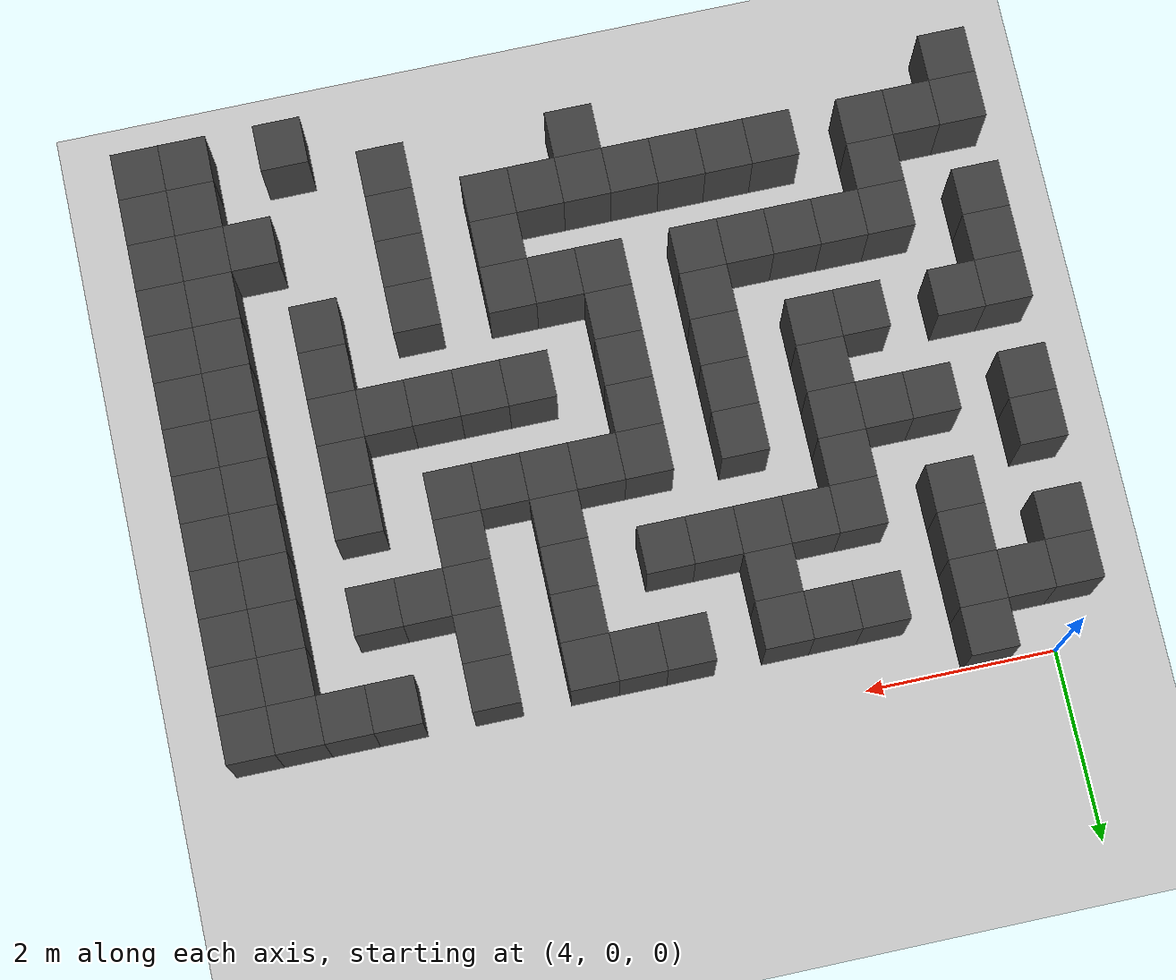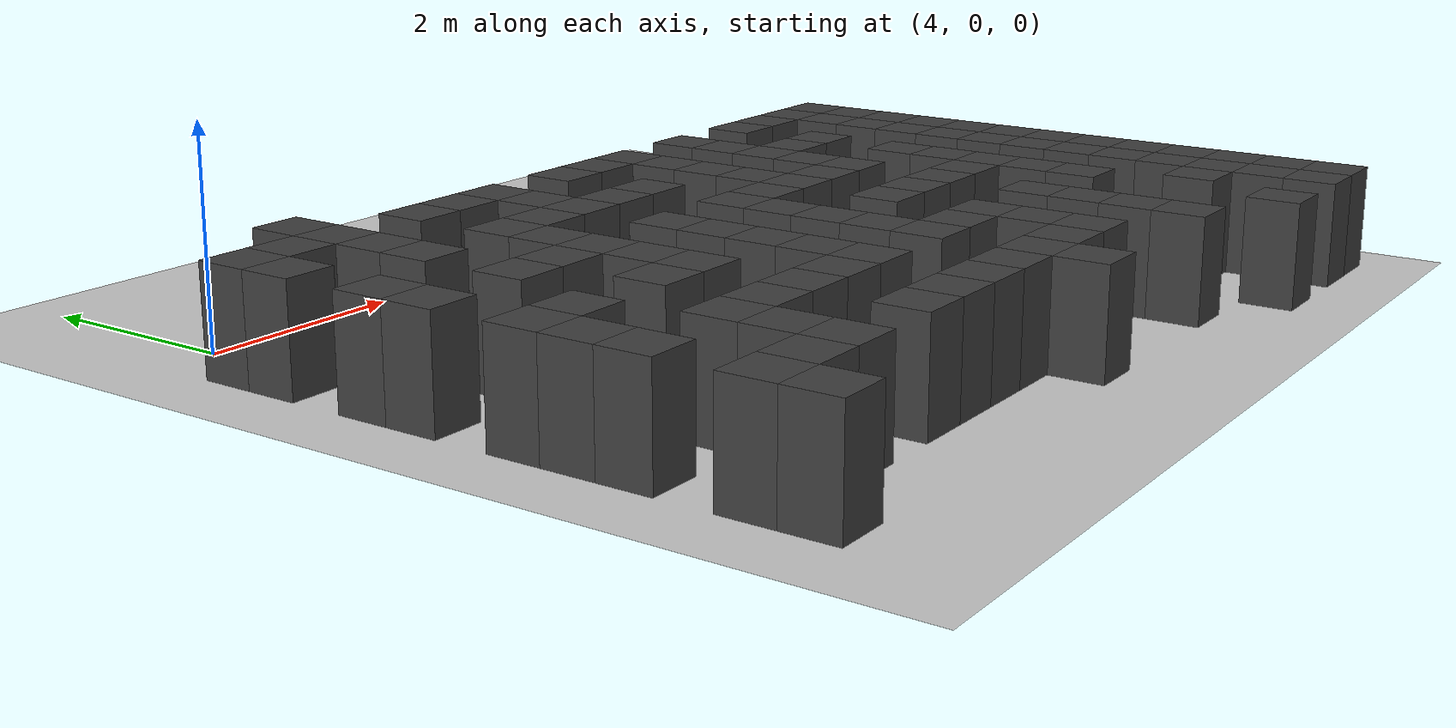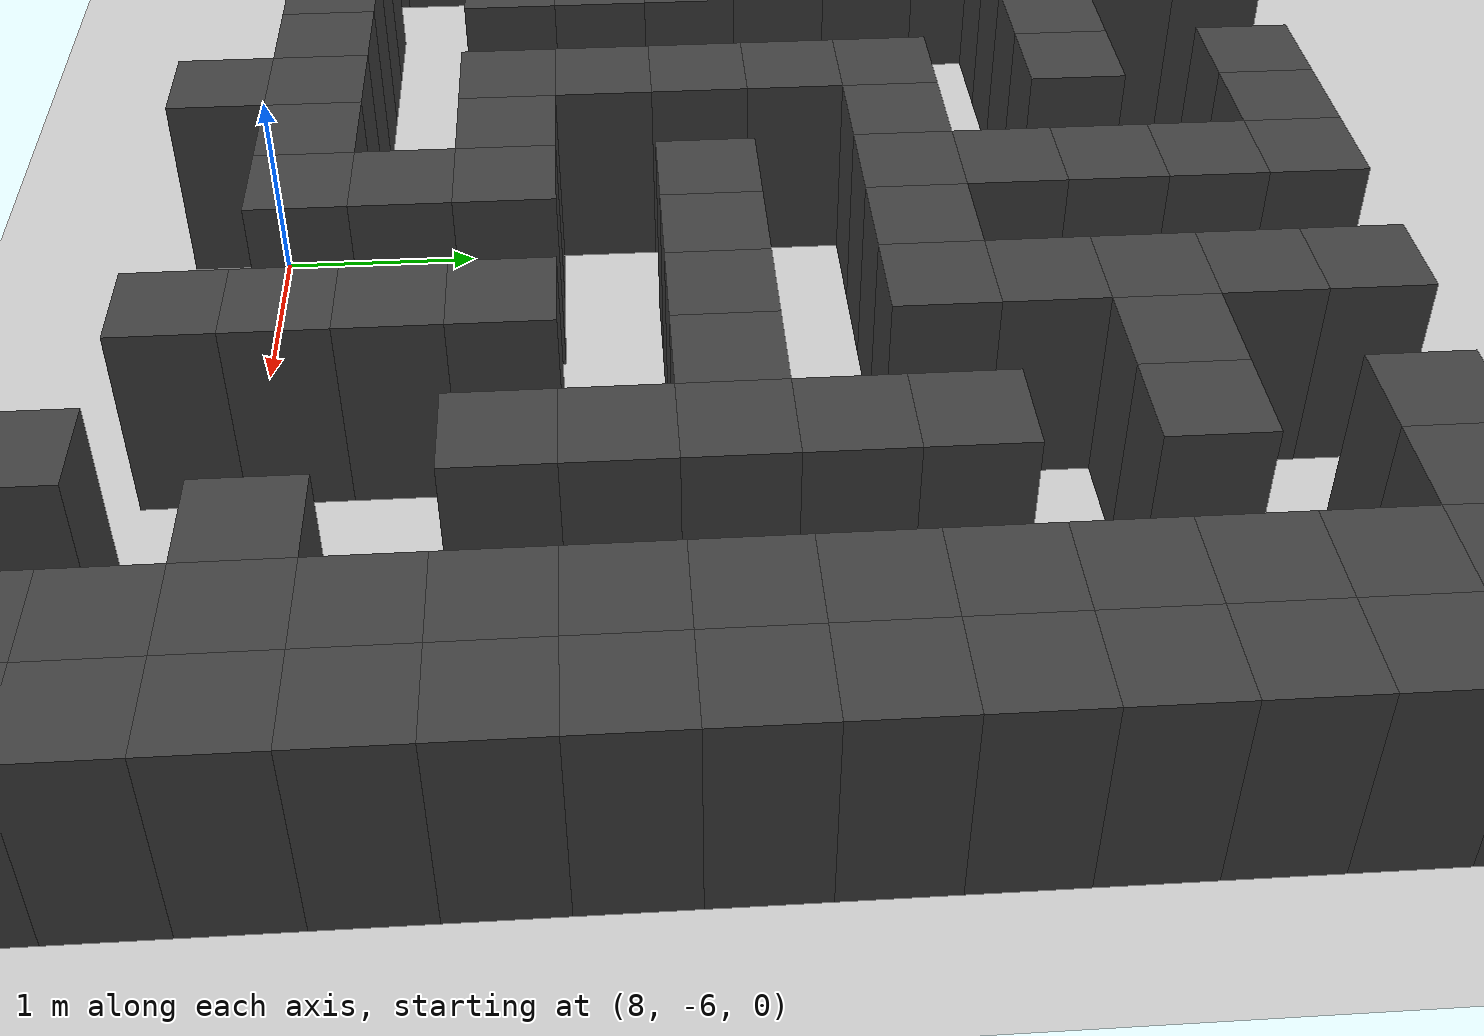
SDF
<sdf version="1.7">
 <world name="map_18332">
  <model name="ground_plane">
   <static>true</static>
   <link name="link">
    <collision name="collision">
     <geometry><plane><normal>0 0 1</normal><size>200 200</size></plane></geometry>
    </collision>
    <visual name="visual">
     <geometry><plane><normal>0 0 1</normal><size>200 200</size></plane></geometry>
     <material><ambient>0.8 0.8 0.8 1</ambient><diffuse>0.8 0.8 0.8 1</diffuse></material>
    </visual>
   </link>
  </model>
  <model name="maze_environment">
   <static>true</static>
   <link name="wall_651">
    <pose>4.750 -0.250 0.500 0 0 0</pose>
    <collision name="col"><geometry><box><size>0.5 0.5 1.0</size></box></geometry></collision>
    <visual name="vis">
     <geometry><box><size>0.5 0.5 1.0</size></box></geometry>
     <material><ambient>0.15 0.15 0.15 1</ambient><diffuse>0.25 0.25 0.25 1</diffuse></material>
    </visual>
   </link>
   <link name="wall_678">
    <pose>3.750 -0.750 0.500 0 0 0</pose>
    <collision name="col"><geometry><box><size>0.5 0.5 1.0</size></box></geometry></collision>
    <visual name="vis">
     <geometry><box><size>0.5 0.5 1.0</size></box></geometry>
     <material><ambient>0.15 0.15 0.15 1</ambient><diffuse>0.25 0.25 0.25 1</diffuse></material>
    </visual>
   </link>
   <link name="wall_679">
    <pose>4.250 -0.750 0.500 0 0 0</pose>
    <collision name="col"><geometry><box><size>0.5 0.5 1.0</size></box></geometry></collision>
    <visual name="vis">
     <geometry><box><size>0.5 0.5 1.0</size></box></geometry>
     <material><ambient>0.15 0.15 0.15 1</ambient><diffuse>0.25 0.25 0.25 1</diffuse></material>
    </visual>
   </link>
   <link name="wall_680">
    <pose>4.750 -0.750 0.500 0 0 0</pose>
    <collision name="col"><geometry><box><size>0.5 0.5 1.0</size></box></geometry></collision>
    <visual name="vis">
     <geometry><box><size>0.5 0.5 1.0</size></box></geometry>
     <material><ambient>0.15 0.15 0.15 1</ambient><diffuse>0.25 0.25 0.25 1</diffuse></material>
    </visual>
   </link>
   <link name="wall_681">
    <pose>5.750 -0.750 0.500 0 0 0</pose>
    <collision name="col"><geometry><box><size>0.5 0.5 1.0</size></box></geometry></collision>
    <visual name="vis">
     <geometry><box><size>0.5 0.5 1.0</size></box></geometry>
     <material><ambient>0.15 0.15 0.15 1</ambient><diffuse>0.25 0.25 0.25 1</diffuse></material>
    </visual>
   </link>
   <link name="wall_682">
    <pose>6.250 -0.750 0.500 0 0 0</pose>
    <collision name="col"><geometry><box><size>0.5 0.5 1.0</size></box></geometry></collision>
    <visual name="vis">
     <geometry><box><size>0.5 0.5 1.0</size></box></geometry>
     <material><ambient>0.15 0.15 0.15 1</ambient><diffuse>0.25 0.25 0.25 1</diffuse></material>
    </visual>
   </link>
   <link name="wall_683">
    <pose>6.750 -0.750 0.500 0 0 0</pose>
    <collision name="col"><geometry><box><size>0.5 0.5 1.0</size></box></geometry></collision>
    <visual name="vis">
     <geometry><box><size>0.5 0.5 1.0</size></box></geometry>
     <material><ambient>0.15 0.15 0.15 1</ambient><diffuse>0.25 0.25 0.25 1</diffuse></material>
    </visual>
   </link>
   <link name="wall_684">
    <pose>7.750 -0.750 0.500 0 0 0</pose>
    <collision name="col"><geometry><box><size>0.5 0.5 1.0</size></box></geometry></collision>
    <visual name="vis">
     <geometry><box><size>0.5 0.5 1.0</size></box></geometry>
     <material><ambient>0.15 0.15 0.15 1</ambient><diffuse>0.25 0.25 0.25 1</diffuse></material>
    </visual>
   </link>
   <link name="wall_685">
    <pose>8.250 -0.750 0.500 0 0 0</pose>
    <collision name="col"><geometry><box><size>0.5 0.5 1.0</size></box></geometry></collision>
    <visual name="vis">
     <geometry><box><size>0.5 0.5 1.0</size></box></geometry>
     <material><ambient>0.15 0.15 0.15 1</ambient><diffuse>0.25 0.25 0.25 1</diffuse></material>
    </visual>
   </link>
   <link name="wall_686">
    <pose>8.750 -0.750 0.500 0 0 0</pose>
    <collision name="col"><geometry><box><size>0.5 0.5 1.0</size></box></geometry></collision>
    <visual name="vis">
     <geometry><box><size>0.5 0.5 1.0</size></box></geometry>
     <material><ambient>0.15 0.15 0.15 1</ambient><diffuse>0.25 0.25 0.25 1</diffuse></material>
    </visual>
   </link>
   <link name="wall_687">
    <pose>9.750 -0.750 0.500 0 0 0</pose>
    <collision name="col"><geometry><box><size>0.5 0.5 1.0</size></box></geometry></collision>
    <visual name="vis">
     <geometry><box><size>0.5 0.5 1.0</size></box></geometry>
     <material><ambient>0.15 0.15 0.15 1</ambient><diffuse>0.25 0.25 0.25 1</diffuse></material>
    </visual>
   </link>
   <link name="wall_688">
    <pose>10.750 -0.750 0.500 0 0 0</pose>
    <collision name="col"><geometry><box><size>0.5 0.5 1.0</size></box></geometry></collision>
    <visual name="vis">
     <geometry><box><size>0.5 0.5 1.0</size></box></geometry>
     <material><ambient>0.15 0.15 0.15 1</ambient><diffuse>0.25 0.25 0.25 1</diffuse></material>
    </visual>
   </link>
   <link name="wall_689">
    <pose>11.250 -0.750 0.500 0 0 0</pose>
    <collision name="col"><geometry><box><size>0.5 0.5 1.0</size></box></geometry></collision>
    <visual name="vis">
     <geometry><box><size>0.5 0.5 1.0</size></box></geometry>
     <material><ambient>0.15 0.15 0.15 1</ambient><diffuse>0.25 0.25 0.25 1</diffuse></material>
    </visual>
   </link>
   <link name="wall_690">
    <pose>11.750 -0.750 0.500 0 0 0</pose>
    <collision name="col"><geometry><box><size>0.5 0.5 1.0</size></box></geometry></collision>
    <visual name="vis">
     <geometry><box><size>0.5 0.5 1.0</size></box></geometry>
     <material><ambient>0.15 0.15 0.15 1</ambient><diffuse>0.25 0.25 0.25 1</diffuse></material>
    </visual>
   </link>
   <link name="wall_691">
    <pose>12.250 -0.750 0.500 0 0 0</pose>
    <collision name="col"><geometry><box><size>0.5 0.5 1.0</size></box></geometry></collision>
    <visual name="vis">
     <geometry><box><size>0.5 0.5 1.0</size></box></geometry>
     <material><ambient>0.15 0.15 0.15 1</ambient><diffuse>0.25 0.25 0.25 1</diffuse></material>
    </visual>
   </link>
   <link name="wall_699">
    <pose>3.750 -1.250 0.500 0 0 0</pose>
    <collision name="col"><geometry><box><size>0.5 0.5 1.0</size></box></geometry></collision>
    <visual name="vis">
     <geometry><box><size>0.5 0.5 1.0</size></box></geometry>
     <material><ambient>0.15 0.15 0.15 1</ambient><diffuse>0.25 0.25 0.25 1</diffuse></material>
    </visual>
   </link>
   <link name="wall_700">
    <pose>4.750 -1.250 0.500 0 0 0</pose>
    <collision name="col"><geometry><box><size>0.5 0.5 1.0</size></box></geometry></collision>
    <visual name="vis">
     <geometry><box><size>0.5 0.5 1.0</size></box></geometry>
     <material><ambient>0.15 0.15 0.15 1</ambient><diffuse>0.25 0.25 0.25 1</diffuse></material>
    </visual>
   </link>
   <link name="wall_701">
    <pose>6.750 -1.250 0.500 0 0 0</pose>
    <collision name="col"><geometry><box><size>0.5 0.5 1.0</size></box></geometry></collision>
    <visual name="vis">
     <geometry><box><size>0.5 0.5 1.0</size></box></geometry>
     <material><ambient>0.15 0.15 0.15 1</ambient><diffuse>0.25 0.25 0.25 1</diffuse></material>
    </visual>
   </link>
   <link name="wall_702">
    <pose>8.750 -1.250 0.500 0 0 0</pose>
    <collision name="col"><geometry><box><size>0.5 0.5 1.0</size></box></geometry></collision>
    <visual name="vis">
     <geometry><box><size>0.5 0.5 1.0</size></box></geometry>
     <material><ambient>0.15 0.15 0.15 1</ambient><diffuse>0.25 0.25 0.25 1</diffuse></material>
    </visual>
   </link>
   <link name="wall_703">
    <pose>9.750 -1.250 0.500 0 0 0</pose>
    <collision name="col"><geometry><box><size>0.5 0.5 1.0</size></box></geometry></collision>
    <visual name="vis">
     <geometry><box><size>0.5 0.5 1.0</size></box></geometry>
     <material><ambient>0.15 0.15 0.15 1</ambient><diffuse>0.25 0.25 0.25 1</diffuse></material>
    </visual>
   </link>
   <link name="wall_704">
    <pose>11.750 -1.250 0.500 0 0 0</pose>
    <collision name="col"><geometry><box><size>0.5 0.5 1.0</size></box></geometry></collision>
    <visual name="vis">
     <geometry><box><size>0.5 0.5 1.0</size></box></geometry>
     <material><ambient>0.15 0.15 0.15 1</ambient><diffuse>0.25 0.25 0.25 1</diffuse></material>
    </visual>
   </link>
   <link name="wall_705">
    <pose>12.250 -1.250 0.500 0 0 0</pose>
    <collision name="col"><geometry><box><size>0.5 0.5 1.0</size></box></geometry></collision>
    <visual name="vis">
     <geometry><box><size>0.5 0.5 1.0</size></box></geometry>
     <material><ambient>0.15 0.15 0.15 1</ambient><diffuse>0.25 0.25 0.25 1</diffuse></material>
    </visual>
   </link>
   <link name="wall_733">
    <pose>4.750 -1.750 0.500 0 0 0</pose>
    <collision name="col"><geometry><box><size>0.5 0.5 1.0</size></box></geometry></collision>
    <visual name="vis">
     <geometry><box><size>0.5 0.5 1.0</size></box></geometry>
     <material><ambient>0.15 0.15 0.15 1</ambient><diffuse>0.25 0.25 0.25 1</diffuse></material>
    </visual>
   </link>
   <link name="wall_734">
    <pose>5.750 -1.750 0.500 0 0 0</pose>
    <collision name="col"><geometry><box><size>0.5 0.5 1.0</size></box></geometry></collision>
    <visual name="vis">
     <geometry><box><size>0.5 0.5 1.0</size></box></geometry>
     <material><ambient>0.15 0.15 0.15 1</ambient><diffuse>0.25 0.25 0.25 1</diffuse></material>
    </visual>
   </link>
   <link name="wall_735">
    <pose>6.250 -1.750 0.500 0 0 0</pose>
    <collision name="col"><geometry><box><size>0.5 0.5 1.0</size></box></geometry></collision>
    <visual name="vis">
     <geometry><box><size>0.5 0.5 1.0</size></box></geometry>
     <material><ambient>0.15 0.15 0.15 1</ambient><diffuse>0.25 0.25 0.25 1</diffuse></material>
    </visual>
   </link>
   <link name="wall_736">
    <pose>6.750 -1.750 0.500 0 0 0</pose>
    <collision name="col"><geometry><box><size>0.5 0.5 1.0</size></box></geometry></collision>
    <visual name="vis">
     <geometry><box><size>0.5 0.5 1.0</size></box></geometry>
     <material><ambient>0.15 0.15 0.15 1</ambient><diffuse>0.25 0.25 0.25 1</diffuse></material>
    </visual>
   </link>
   <link name="wall_737">
    <pose>7.250 -1.750 0.500 0 0 0</pose>
    <collision name="col"><geometry><box><size>0.5 0.5 1.0</size></box></geometry></collision>
    <visual name="vis">
     <geometry><box><size>0.5 0.5 1.0</size></box></geometry>
     <material><ambient>0.15 0.15 0.15 1</ambient><diffuse>0.25 0.25 0.25 1</diffuse></material>
    </visual>
   </link>
   <link name="wall_738">
    <pose>7.750 -1.750 0.500 0 0 0</pose>
    <collision name="col"><geometry><box><size>0.5 0.5 1.0</size></box></geometry></collision>
    <visual name="vis">
     <geometry><box><size>0.5 0.5 1.0</size></box></geometry>
     <material><ambient>0.15 0.15 0.15 1</ambient><diffuse>0.25 0.25 0.25 1</diffuse></material>
    </visual>
   </link>
   <link name="wall_739">
    <pose>8.750 -1.750 0.500 0 0 0</pose>
    <collision name="col"><geometry><box><size>0.5 0.5 1.0</size></box></geometry></collision>
    <visual name="vis">
     <geometry><box><size>0.5 0.5 1.0</size></box></geometry>
     <material><ambient>0.15 0.15 0.15 1</ambient><diffuse>0.25 0.25 0.25 1</diffuse></material>
    </visual>
   </link>
   <link name="wall_740">
    <pose>9.750 -1.750 0.500 0 0 0</pose>
    <collision name="col"><geometry><box><size>0.5 0.5 1.0</size></box></geometry></collision>
    <visual name="vis">
     <geometry><box><size>0.5 0.5 1.0</size></box></geometry>
     <material><ambient>0.15 0.15 0.15 1</ambient><diffuse>0.25 0.25 0.25 1</diffuse></material>
    </visual>
   </link>
   <link name="wall_741">
    <pose>10.250 -1.750 0.500 0 0 0</pose>
    <collision name="col"><geometry><box><size>0.5 0.5 1.0</size></box></geometry></collision>
    <visual name="vis">
     <geometry><box><size>0.5 0.5 1.0</size></box></geometry>
     <material><ambient>0.15 0.15 0.15 1</ambient><diffuse>0.25 0.25 0.25 1</diffuse></material>
    </visual>
   </link>
   <link name="wall_742">
    <pose>10.750 -1.750 0.500 0 0 0</pose>
    <collision name="col"><geometry><box><size>0.5 0.5 1.0</size></box></geometry></collision>
    <visual name="vis">
     <geometry><box><size>0.5 0.5 1.0</size></box></geometry>
     <material><ambient>0.15 0.15 0.15 1</ambient><diffuse>0.25 0.25 0.25 1</diffuse></material>
    </visual>
   </link>
   <link name="wall_743">
    <pose>11.750 -1.750 0.500 0 0 0</pose>
    <collision name="col"><geometry><box><size>0.5 0.5 1.0</size></box></geometry></collision>
    <visual name="vis">
     <geometry><box><size>0.5 0.5 1.0</size></box></geometry>
     <material><ambient>0.15 0.15 0.15 1</ambient><diffuse>0.25 0.25 0.25 1</diffuse></material>
    </visual>
   </link>
   <link name="wall_744">
    <pose>12.250 -1.750 0.500 0 0 0</pose>
    <collision name="col"><geometry><box><size>0.5 0.5 1.0</size></box></geometry></collision>
    <visual name="vis">
     <geometry><box><size>0.5 0.5 1.0</size></box></geometry>
     <material><ambient>0.15 0.15 0.15 1</ambient><diffuse>0.25 0.25 0.25 1</diffuse></material>
    </visual>
   </link>
   <link name="wall_751">
    <pose>3.750 -2.250 0.500 0 0 0</pose>
    <collision name="col"><geometry><box><size>0.5 0.5 1.0</size></box></geometry></collision>
    <visual name="vis">
     <geometry><box><size>0.5 0.5 1.0</size></box></geometry>
     <material><ambient>0.15 0.15 0.15 1</ambient><diffuse>0.25 0.25 0.25 1</diffuse></material>
    </visual>
   </link>
   <link name="wall_752">
    <pose>5.750 -2.250 0.500 0 0 0</pose>
    <collision name="col"><geometry><box><size>0.5 0.5 1.0</size></box></geometry></collision>
    <visual name="vis">
     <geometry><box><size>0.5 0.5 1.0</size></box></geometry>
     <material><ambient>0.15 0.15 0.15 1</ambient><diffuse>0.25 0.25 0.25 1</diffuse></material>
    </visual>
   </link>
   <link name="wall_753">
    <pose>8.750 -2.250 0.500 0 0 0</pose>
    <collision name="col"><geometry><box><size>0.5 0.5 1.0</size></box></geometry></collision>
    <visual name="vis">
     <geometry><box><size>0.5 0.5 1.0</size></box></geometry>
     <material><ambient>0.15 0.15 0.15 1</ambient><diffuse>0.25 0.25 0.25 1</diffuse></material>
    </visual>
   </link>
   <link name="wall_754">
    <pose>9.750 -2.250 0.500 0 0 0</pose>
    <collision name="col"><geometry><box><size>0.5 0.5 1.0</size></box></geometry></collision>
    <visual name="vis">
     <geometry><box><size>0.5 0.5 1.0</size></box></geometry>
     <material><ambient>0.15 0.15 0.15 1</ambient><diffuse>0.25 0.25 0.25 1</diffuse></material>
    </visual>
   </link>
   <link name="wall_755">
    <pose>11.750 -2.250 0.500 0 0 0</pose>
    <collision name="col"><geometry><box><size>0.5 0.5 1.0</size></box></geometry></collision>
    <visual name="vis">
     <geometry><box><size>0.5 0.5 1.0</size></box></geometry>
     <material><ambient>0.15 0.15 0.15 1</ambient><diffuse>0.25 0.25 0.25 1</diffuse></material>
    </visual>
   </link>
   <link name="wall_756">
    <pose>12.250 -2.250 0.500 0 0 0</pose>
    <collision name="col"><geometry><box><size>0.5 0.5 1.0</size></box></geometry></collision>
    <visual name="vis">
     <geometry><box><size>0.5 0.5 1.0</size></box></geometry>
     <material><ambient>0.15 0.15 0.15 1</ambient><diffuse>0.25 0.25 0.25 1</diffuse></material>
    </visual>
   </link>
   <link name="wall_778">
    <pose>3.750 -2.750 0.500 0 0 0</pose>
    <collision name="col"><geometry><box><size>0.5 0.5 1.0</size></box></geometry></collision>
    <visual name="vis">
     <geometry><box><size>0.5 0.5 1.0</size></box></geometry>
     <material><ambient>0.15 0.15 0.15 1</ambient><diffuse>0.25 0.25 0.25 1</diffuse></material>
    </visual>
   </link>
   <link name="wall_779">
    <pose>4.750 -2.750 0.500 0 0 0</pose>
    <collision name="col"><geometry><box><size>0.5 0.5 1.0</size></box></geometry></collision>
    <visual name="vis">
     <geometry><box><size>0.5 0.5 1.0</size></box></geometry>
     <material><ambient>0.15 0.15 0.15 1</ambient><diffuse>0.25 0.25 0.25 1</diffuse></material>
    </visual>
   </link>
   <link name="wall_780">
    <pose>5.250 -2.750 0.500 0 0 0</pose>
    <collision name="col"><geometry><box><size>0.5 0.5 1.0</size></box></geometry></collision>
    <visual name="vis">
     <geometry><box><size>0.5 0.5 1.0</size></box></geometry>
     <material><ambient>0.15 0.15 0.15 1</ambient><diffuse>0.25 0.25 0.25 1</diffuse></material>
    </visual>
   </link>
   <link name="wall_781">
    <pose>5.750 -2.750 0.500 0 0 0</pose>
    <collision name="col"><geometry><box><size>0.5 0.5 1.0</size></box></geometry></collision>
    <visual name="vis">
     <geometry><box><size>0.5 0.5 1.0</size></box></geometry>
     <material><ambient>0.15 0.15 0.15 1</ambient><diffuse>0.25 0.25 0.25 1</diffuse></material>
    </visual>
   </link>
   <link name="wall_782">
    <pose>6.750 -2.750 0.500 0 0 0</pose>
    <collision name="col"><geometry><box><size>0.5 0.5 1.0</size></box></geometry></collision>
    <visual name="vis">
     <geometry><box><size>0.5 0.5 1.0</size></box></geometry>
     <material><ambient>0.15 0.15 0.15 1</ambient><diffuse>0.25 0.25 0.25 1</diffuse></material>
    </visual>
   </link>
   <link name="wall_783">
    <pose>7.750 -2.750 0.500 0 0 0</pose>
    <collision name="col"><geometry><box><size>0.5 0.5 1.0</size></box></geometry></collision>
    <visual name="vis">
     <geometry><box><size>0.5 0.5 1.0</size></box></geometry>
     <material><ambient>0.15 0.15 0.15 1</ambient><diffuse>0.25 0.25 0.25 1</diffuse></material>
    </visual>
   </link>
   <link name="wall_784">
    <pose>8.250 -2.750 0.500 0 0 0</pose>
    <collision name="col"><geometry><box><size>0.5 0.5 1.0</size></box></geometry></collision>
    <visual name="vis">
     <geometry><box><size>0.5 0.5 1.0</size></box></geometry>
     <material><ambient>0.15 0.15 0.15 1</ambient><diffuse>0.25 0.25 0.25 1</diffuse></material>
    </visual>
   </link>
   <link name="wall_785">
    <pose>8.750 -2.750 0.500 0 0 0</pose>
    <collision name="col"><geometry><box><size>0.5 0.5 1.0</size></box></geometry></collision>
    <visual name="vis">
     <geometry><box><size>0.5 0.5 1.0</size></box></geometry>
     <material><ambient>0.15 0.15 0.15 1</ambient><diffuse>0.25 0.25 0.25 1</diffuse></material>
    </visual>
   </link>
   <link name="wall_786">
    <pose>9.250 -2.750 0.500 0 0 0</pose>
    <collision name="col"><geometry><box><size>0.5 0.5 1.0</size></box></geometry></collision>
    <visual name="vis">
     <geometry><box><size>0.5 0.5 1.0</size></box></geometry>
     <material><ambient>0.15 0.15 0.15 1</ambient><diffuse>0.25 0.25 0.25 1</diffuse></material>
    </visual>
   </link>
   <link name="wall_787">
    <pose>9.750 -2.750 0.500 0 0 0</pose>
    <collision name="col"><geometry><box><size>0.5 0.5 1.0</size></box></geometry></collision>
    <visual name="vis">
     <geometry><box><size>0.5 0.5 1.0</size></box></geometry>
     <material><ambient>0.15 0.15 0.15 1</ambient><diffuse>0.25 0.25 0.25 1</diffuse></material>
    </visual>
   </link>
   <link name="wall_788">
    <pose>10.750 -2.750 0.500 0 0 0</pose>
    <collision name="col"><geometry><box><size>0.5 0.5 1.0</size></box></geometry></collision>
    <visual name="vis">
     <geometry><box><size>0.5 0.5 1.0</size></box></geometry>
     <material><ambient>0.15 0.15 0.15 1</ambient><diffuse>0.25 0.25 0.25 1</diffuse></material>
    </visual>
   </link>
   <link name="wall_789">
    <pose>11.750 -2.750 0.500 0 0 0</pose>
    <collision name="col"><geometry><box><size>0.5 0.5 1.0</size></box></geometry></collision>
    <visual name="vis">
     <geometry><box><size>0.5 0.5 1.0</size></box></geometry>
     <material><ambient>0.15 0.15 0.15 1</ambient><diffuse>0.25 0.25 0.25 1</diffuse></material>
    </visual>
   </link>
   <link name="wall_790">
    <pose>12.250 -2.750 0.500 0 0 0</pose>
    <collision name="col"><geometry><box><size>0.5 0.5 1.0</size></box></geometry></collision>
    <visual name="vis">
     <geometry><box><size>0.5 0.5 1.0</size></box></geometry>
     <material><ambient>0.15 0.15 0.15 1</ambient><diffuse>0.25 0.25 0.25 1</diffuse></material>
    </visual>
   </link>
   <link name="wall_802">
    <pose>5.750 -3.250 0.500 0 0 0</pose>
    <collision name="col"><geometry><box><size>0.5 0.5 1.0</size></box></geometry></collision>
    <visual name="vis">
     <geometry><box><size>0.5 0.5 1.0</size></box></geometry>
     <material><ambient>0.15 0.15 0.15 1</ambient><diffuse>0.25 0.25 0.25 1</diffuse></material>
    </visual>
   </link>
   <link name="wall_803">
    <pose>6.750 -3.250 0.500 0 0 0</pose>
    <collision name="col"><geometry><box><size>0.5 0.5 1.0</size></box></geometry></collision>
    <visual name="vis">
     <geometry><box><size>0.5 0.5 1.0</size></box></geometry>
     <material><ambient>0.15 0.15 0.15 1</ambient><diffuse>0.25 0.25 0.25 1</diffuse></material>
    </visual>
   </link>
   <link name="wall_804">
    <pose>7.750 -3.250 0.500 0 0 0</pose>
    <collision name="col"><geometry><box><size>0.5 0.5 1.0</size></box></geometry></collision>
    <visual name="vis">
     <geometry><box><size>0.5 0.5 1.0</size></box></geometry>
     <material><ambient>0.15 0.15 0.15 1</ambient><diffuse>0.25 0.25 0.25 1</diffuse></material>
    </visual>
   </link>
   <link name="wall_805">
    <pose>10.750 -3.250 0.500 0 0 0</pose>
    <collision name="col"><geometry><box><size>0.5 0.5 1.0</size></box></geometry></collision>
    <visual name="vis">
     <geometry><box><size>0.5 0.5 1.0</size></box></geometry>
     <material><ambient>0.15 0.15 0.15 1</ambient><diffuse>0.25 0.25 0.25 1</diffuse></material>
    </visual>
   </link>
   <link name="wall_806">
    <pose>11.750 -3.250 0.500 0 0 0</pose>
    <collision name="col"><geometry><box><size>0.5 0.5 1.0</size></box></geometry></collision>
    <visual name="vis">
     <geometry><box><size>0.5 0.5 1.0</size></box></geometry>
     <material><ambient>0.15 0.15 0.15 1</ambient><diffuse>0.25 0.25 0.25 1</diffuse></material>
    </visual>
   </link>
   <link name="wall_807">
    <pose>12.250 -3.250 0.500 0 0 0</pose>
    <collision name="col"><geometry><box><size>0.5 0.5 1.0</size></box></geometry></collision>
    <visual name="vis">
     <geometry><box><size>0.5 0.5 1.0</size></box></geometry>
     <material><ambient>0.15 0.15 0.15 1</ambient><diffuse>0.25 0.25 0.25 1</diffuse></material>
    </visual>
   </link>
   <link name="wall_828">
    <pose>3.750 -3.750 0.500 0 0 0</pose>
    <collision name="col"><geometry><box><size>0.5 0.5 1.0</size></box></geometry></collision>
    <visual name="vis">
     <geometry><box><size>0.5 0.5 1.0</size></box></geometry>
     <material><ambient>0.15 0.15 0.15 1</ambient><diffuse>0.25 0.25 0.25 1</diffuse></material>
    </visual>
   </link>
   <link name="wall_829">
    <pose>4.250 -3.750 0.500 0 0 0</pose>
    <collision name="col"><geometry><box><size>0.5 0.5 1.0</size></box></geometry></collision>
    <visual name="vis">
     <geometry><box><size>0.5 0.5 1.0</size></box></geometry>
     <material><ambient>0.15 0.15 0.15 1</ambient><diffuse>0.25 0.25 0.25 1</diffuse></material>
    </visual>
   </link>
   <link name="wall_830">
    <pose>5.250 -3.750 0.500 0 0 0</pose>
    <collision name="col"><geometry><box><size>0.5 0.5 1.0</size></box></geometry></collision>
    <visual name="vis">
     <geometry><box><size>0.5 0.5 1.0</size></box></geometry>
     <material><ambient>0.15 0.15 0.15 1</ambient><diffuse>0.25 0.25 0.25 1</diffuse></material>
    </visual>
   </link>
   <link name="wall_831">
    <pose>5.750 -3.750 0.500 0 0 0</pose>
    <collision name="col"><geometry><box><size>0.5 0.5 1.0</size></box></geometry></collision>
    <visual name="vis">
     <geometry><box><size>0.5 0.5 1.0</size></box></geometry>
     <material><ambient>0.15 0.15 0.15 1</ambient><diffuse>0.25 0.25 0.25 1</diffuse></material>
    </visual>
   </link>
   <link name="wall_832">
    <pose>6.750 -3.750 0.500 0 0 0</pose>
    <collision name="col"><geometry><box><size>0.5 0.5 1.0</size></box></geometry></collision>
    <visual name="vis">
     <geometry><box><size>0.5 0.5 1.0</size></box></geometry>
     <material><ambient>0.15 0.15 0.15 1</ambient><diffuse>0.25 0.25 0.25 1</diffuse></material>
    </visual>
   </link>
   <link name="wall_833">
    <pose>7.750 -3.750 0.500 0 0 0</pose>
    <collision name="col"><geometry><box><size>0.5 0.5 1.0</size></box></geometry></collision>
    <visual name="vis">
     <geometry><box><size>0.5 0.5 1.0</size></box></geometry>
     <material><ambient>0.15 0.15 0.15 1</ambient><diffuse>0.25 0.25 0.25 1</diffuse></material>
    </visual>
   </link>
   <link name="wall_834">
    <pose>8.750 -3.750 0.500 0 0 0</pose>
    <collision name="col"><geometry><box><size>0.5 0.5 1.0</size></box></geometry></collision>
    <visual name="vis">
     <geometry><box><size>0.5 0.5 1.0</size></box></geometry>
     <material><ambient>0.15 0.15 0.15 1</ambient><diffuse>0.25 0.25 0.25 1</diffuse></material>
    </visual>
   </link>
   <link name="wall_835">
    <pose>9.250 -3.750 0.500 0 0 0</pose>
    <collision name="col"><geometry><box><size>0.5 0.5 1.0</size></box></geometry></collision>
    <visual name="vis">
     <geometry><box><size>0.5 0.5 1.0</size></box></geometry>
     <material><ambient>0.15 0.15 0.15 1</ambient><diffuse>0.25 0.25 0.25 1</diffuse></material>
    </visual>
   </link>
   <link name="wall_836">
    <pose>9.750 -3.750 0.500 0 0 0</pose>
    <collision name="col"><geometry><box><size>0.5 0.5 1.0</size></box></geometry></collision>
    <visual name="vis">
     <geometry><box><size>0.5 0.5 1.0</size></box></geometry>
     <material><ambient>0.15 0.15 0.15 1</ambient><diffuse>0.25 0.25 0.25 1</diffuse></material>
    </visual>
   </link>
   <link name="wall_837">
    <pose>10.250 -3.750 0.500 0 0 0</pose>
    <collision name="col"><geometry><box><size>0.5 0.5 1.0</size></box></geometry></collision>
    <visual name="vis">
     <geometry><box><size>0.5 0.5 1.0</size></box></geometry>
     <material><ambient>0.15 0.15 0.15 1</ambient><diffuse>0.25 0.25 0.25 1</diffuse></material>
    </visual>
   </link>
   <link name="wall_838">
    <pose>10.750 -3.750 0.500 0 0 0</pose>
    <collision name="col"><geometry><box><size>0.5 0.5 1.0</size></box></geometry></collision>
    <visual name="vis">
     <geometry><box><size>0.5 0.5 1.0</size></box></geometry>
     <material><ambient>0.15 0.15 0.15 1</ambient><diffuse>0.25 0.25 0.25 1</diffuse></material>
    </visual>
   </link>
   <link name="wall_839">
    <pose>11.750 -3.750 0.500 0 0 0</pose>
    <collision name="col"><geometry><box><size>0.5 0.5 1.0</size></box></geometry></collision>
    <visual name="vis">
     <geometry><box><size>0.5 0.5 1.0</size></box></geometry>
     <material><ambient>0.15 0.15 0.15 1</ambient><diffuse>0.25 0.25 0.25 1</diffuse></material>
    </visual>
   </link>
   <link name="wall_840">
    <pose>12.250 -3.750 0.500 0 0 0</pose>
    <collision name="col"><geometry><box><size>0.5 0.5 1.0</size></box></geometry></collision>
    <visual name="vis">
     <geometry><box><size>0.5 0.5 1.0</size></box></geometry>
     <material><ambient>0.15 0.15 0.15 1</ambient><diffuse>0.25 0.25 0.25 1</diffuse></material>
    </visual>
   </link>
   <link name="wall_850">
    <pose>3.750 -4.250 0.500 0 0 0</pose>
    <collision name="col"><geometry><box><size>0.5 0.5 1.0</size></box></geometry></collision>
    <visual name="vis">
     <geometry><box><size>0.5 0.5 1.0</size></box></geometry>
     <material><ambient>0.15 0.15 0.15 1</ambient><diffuse>0.25 0.25 0.25 1</diffuse></material>
    </visual>
   </link>
   <link name="wall_851">
    <pose>6.750 -4.250 0.500 0 0 0</pose>
    <collision name="col"><geometry><box><size>0.5 0.5 1.0</size></box></geometry></collision>
    <visual name="vis">
     <geometry><box><size>0.5 0.5 1.0</size></box></geometry>
     <material><ambient>0.15 0.15 0.15 1</ambient><diffuse>0.25 0.25 0.25 1</diffuse></material>
    </visual>
   </link>
   <link name="wall_852">
    <pose>7.750 -4.250 0.500 0 0 0</pose>
    <collision name="col"><geometry><box><size>0.5 0.5 1.0</size></box></geometry></collision>
    <visual name="vis">
     <geometry><box><size>0.5 0.5 1.0</size></box></geometry>
     <material><ambient>0.15 0.15 0.15 1</ambient><diffuse>0.25 0.25 0.25 1</diffuse></material>
    </visual>
   </link>
   <link name="wall_853">
    <pose>10.750 -4.250 0.500 0 0 0</pose>
    <collision name="col"><geometry><box><size>0.5 0.5 1.0</size></box></geometry></collision>
    <visual name="vis">
     <geometry><box><size>0.5 0.5 1.0</size></box></geometry>
     <material><ambient>0.15 0.15 0.15 1</ambient><diffuse>0.25 0.25 0.25 1</diffuse></material>
    </visual>
   </link>
   <link name="wall_854">
    <pose>11.750 -4.250 0.500 0 0 0</pose>
    <collision name="col"><geometry><box><size>0.5 0.5 1.0</size></box></geometry></collision>
    <visual name="vis">
     <geometry><box><size>0.5 0.5 1.0</size></box></geometry>
     <material><ambient>0.15 0.15 0.15 1</ambient><diffuse>0.25 0.25 0.25 1</diffuse></material>
    </visual>
   </link>
   <link name="wall_855">
    <pose>12.250 -4.250 0.500 0 0 0</pose>
    <collision name="col"><geometry><box><size>0.5 0.5 1.0</size></box></geometry></collision>
    <visual name="vis">
     <geometry><box><size>0.5 0.5 1.0</size></box></geometry>
     <material><ambient>0.15 0.15 0.15 1</ambient><diffuse>0.25 0.25 0.25 1</diffuse></material>
    </visual>
   </link>
   <link name="wall_877">
    <pose>3.750 -4.750 0.500 0 0 0</pose>
    <collision name="col"><geometry><box><size>0.5 0.5 1.0</size></box></geometry></collision>
    <visual name="vis">
     <geometry><box><size>0.5 0.5 1.0</size></box></geometry>
     <material><ambient>0.15 0.15 0.15 1</ambient><diffuse>0.25 0.25 0.25 1</diffuse></material>
    </visual>
   </link>
   <link name="wall_878">
    <pose>4.750 -4.750 0.500 0 0 0</pose>
    <collision name="col"><geometry><box><size>0.5 0.5 1.0</size></box></geometry></collision>
    <visual name="vis">
     <geometry><box><size>0.5 0.5 1.0</size></box></geometry>
     <material><ambient>0.15 0.15 0.15 1</ambient><diffuse>0.25 0.25 0.25 1</diffuse></material>
    </visual>
   </link>
   <link name="wall_879">
    <pose>5.250 -4.750 0.500 0 0 0</pose>
    <collision name="col"><geometry><box><size>0.5 0.5 1.0</size></box></geometry></collision>
    <visual name="vis">
     <geometry><box><size>0.5 0.5 1.0</size></box></geometry>
     <material><ambient>0.15 0.15 0.15 1</ambient><diffuse>0.25 0.25 0.25 1</diffuse></material>
    </visual>
   </link>
   <link name="wall_880">
    <pose>5.750 -4.750 0.500 0 0 0</pose>
    <collision name="col"><geometry><box><size>0.5 0.5 1.0</size></box></geometry></collision>
    <visual name="vis">
     <geometry><box><size>0.5 0.5 1.0</size></box></geometry>
     <material><ambient>0.15 0.15 0.15 1</ambient><diffuse>0.25 0.25 0.25 1</diffuse></material>
    </visual>
   </link>
   <link name="wall_881">
    <pose>6.250 -4.750 0.500 0 0 0</pose>
    <collision name="col"><geometry><box><size>0.5 0.5 1.0</size></box></geometry></collision>
    <visual name="vis">
     <geometry><box><size>0.5 0.5 1.0</size></box></geometry>
     <material><ambient>0.15 0.15 0.15 1</ambient><diffuse>0.25 0.25 0.25 1</diffuse></material>
    </visual>
   </link>
   <link name="wall_882">
    <pose>6.750 -4.750 0.500 0 0 0</pose>
    <collision name="col"><geometry><box><size>0.5 0.5 1.0</size></box></geometry></collision>
    <visual name="vis">
     <geometry><box><size>0.5 0.5 1.0</size></box></geometry>
     <material><ambient>0.15 0.15 0.15 1</ambient><diffuse>0.25 0.25 0.25 1</diffuse></material>
    </visual>
   </link>
   <link name="wall_883">
    <pose>7.750 -4.750 0.500 0 0 0</pose>
    <collision name="col"><geometry><box><size>0.5 0.5 1.0</size></box></geometry></collision>
    <visual name="vis">
     <geometry><box><size>0.5 0.5 1.0</size></box></geometry>
     <material><ambient>0.15 0.15 0.15 1</ambient><diffuse>0.25 0.25 0.25 1</diffuse></material>
    </visual>
   </link>
   <link name="wall_884">
    <pose>8.250 -4.750 0.500 0 0 0</pose>
    <collision name="col"><geometry><box><size>0.5 0.5 1.0</size></box></geometry></collision>
    <visual name="vis">
     <geometry><box><size>0.5 0.5 1.0</size></box></geometry>
     <material><ambient>0.15 0.15 0.15 1</ambient><diffuse>0.25 0.25 0.25 1</diffuse></material>
    </visual>
   </link>
   <link name="wall_885">
    <pose>8.750 -4.750 0.500 0 0 0</pose>
    <collision name="col"><geometry><box><size>0.5 0.5 1.0</size></box></geometry></collision>
    <visual name="vis">
     <geometry><box><size>0.5 0.5 1.0</size></box></geometry>
     <material><ambient>0.15 0.15 0.15 1</ambient><diffuse>0.25 0.25 0.25 1</diffuse></material>
    </visual>
   </link>
   <link name="wall_886">
    <pose>9.750 -4.750 0.500 0 0 0</pose>
    <collision name="col"><geometry><box><size>0.5 0.5 1.0</size></box></geometry></collision>
    <visual name="vis">
     <geometry><box><size>0.5 0.5 1.0</size></box></geometry>
     <material><ambient>0.15 0.15 0.15 1</ambient><diffuse>0.25 0.25 0.25 1</diffuse></material>
    </visual>
   </link>
   <link name="wall_887">
    <pose>10.750 -4.750 0.500 0 0 0</pose>
    <collision name="col"><geometry><box><size>0.5 0.5 1.0</size></box></geometry></collision>
    <visual name="vis">
     <geometry><box><size>0.5 0.5 1.0</size></box></geometry>
     <material><ambient>0.15 0.15 0.15 1</ambient><diffuse>0.25 0.25 0.25 1</diffuse></material>
    </visual>
   </link>
   <link name="wall_888">
    <pose>11.750 -4.750 0.500 0 0 0</pose>
    <collision name="col"><geometry><box><size>0.5 0.5 1.0</size></box></geometry></collision>
    <visual name="vis">
     <geometry><box><size>0.5 0.5 1.0</size></box></geometry>
     <material><ambient>0.15 0.15 0.15 1</ambient><diffuse>0.25 0.25 0.25 1</diffuse></material>
    </visual>
   </link>
   <link name="wall_889">
    <pose>12.250 -4.750 0.500 0 0 0</pose>
    <collision name="col"><geometry><box><size>0.5 0.5 1.0</size></box></geometry></collision>
    <visual name="vis">
     <geometry><box><size>0.5 0.5 1.0</size></box></geometry>
     <material><ambient>0.15 0.15 0.15 1</ambient><diffuse>0.25 0.25 0.25 1</diffuse></material>
    </visual>
   </link>
   <link name="wall_900">
    <pose>4.750 -5.250 0.500 0 0 0</pose>
    <collision name="col"><geometry><box><size>0.5 0.5 1.0</size></box></geometry></collision>
    <visual name="vis">
     <geometry><box><size>0.5 0.5 1.0</size></box></geometry>
     <material><ambient>0.15 0.15 0.15 1</ambient><diffuse>0.25 0.25 0.25 1</diffuse></material>
    </visual>
   </link>
   <link name="wall_901">
    <pose>8.750 -5.250 0.500 0 0 0</pose>
    <collision name="col"><geometry><box><size>0.5 0.5 1.0</size></box></geometry></collision>
    <visual name="vis">
     <geometry><box><size>0.5 0.5 1.0</size></box></geometry>
     <material><ambient>0.15 0.15 0.15 1</ambient><diffuse>0.25 0.25 0.25 1</diffuse></material>
    </visual>
   </link>
   <link name="wall_902">
    <pose>9.750 -5.250 0.500 0 0 0</pose>
    <collision name="col"><geometry><box><size>0.5 0.5 1.0</size></box></geometry></collision>
    <visual name="vis">
     <geometry><box><size>0.5 0.5 1.0</size></box></geometry>
     <material><ambient>0.15 0.15 0.15 1</ambient><diffuse>0.25 0.25 0.25 1</diffuse></material>
    </visual>
   </link>
   <link name="wall_903">
    <pose>11.750 -5.250 0.500 0 0 0</pose>
    <collision name="col"><geometry><box><size>0.5 0.5 1.0</size></box></geometry></collision>
    <visual name="vis">
     <geometry><box><size>0.5 0.5 1.0</size></box></geometry>
     <material><ambient>0.15 0.15 0.15 1</ambient><diffuse>0.25 0.25 0.25 1</diffuse></material>
    </visual>
   </link>
   <link name="wall_904">
    <pose>12.250 -5.250 0.500 0 0 0</pose>
    <collision name="col"><geometry><box><size>0.5 0.5 1.0</size></box></geometry></collision>
    <visual name="vis">
     <geometry><box><size>0.5 0.5 1.0</size></box></geometry>
     <material><ambient>0.15 0.15 0.15 1</ambient><diffuse>0.25 0.25 0.25 1</diffuse></material>
    </visual>
   </link>
   <link name="wall_927">
    <pose>3.750 -5.750 0.500 0 0 0</pose>
    <collision name="col"><geometry><box><size>0.5 0.5 1.0</size></box></geometry></collision>
    <visual name="vis">
     <geometry><box><size>0.5 0.5 1.0</size></box></geometry>
     <material><ambient>0.15 0.15 0.15 1</ambient><diffuse>0.25 0.25 0.25 1</diffuse></material>
    </visual>
   </link>
   <link name="wall_928">
    <pose>4.250 -5.750 0.500 0 0 0</pose>
    <collision name="col"><geometry><box><size>0.5 0.5 1.0</size></box></geometry></collision>
    <visual name="vis">
     <geometry><box><size>0.5 0.5 1.0</size></box></geometry>
     <material><ambient>0.15 0.15 0.15 1</ambient><diffuse>0.25 0.25 0.25 1</diffuse></material>
    </visual>
   </link>
   <link name="wall_929">
    <pose>4.750 -5.750 0.500 0 0 0</pose>
    <collision name="col"><geometry><box><size>0.5 0.5 1.0</size></box></geometry></collision>
    <visual name="vis">
     <geometry><box><size>0.5 0.5 1.0</size></box></geometry>
     <material><ambient>0.15 0.15 0.15 1</ambient><diffuse>0.25 0.25 0.25 1</diffuse></material>
    </visual>
   </link>
   <link name="wall_930">
    <pose>5.750 -5.750 0.500 0 0 0</pose>
    <collision name="col"><geometry><box><size>0.5 0.5 1.0</size></box></geometry></collision>
    <visual name="vis">
     <geometry><box><size>0.5 0.5 1.0</size></box></geometry>
     <material><ambient>0.15 0.15 0.15 1</ambient><diffuse>0.25 0.25 0.25 1</diffuse></material>
    </visual>
   </link>
   <link name="wall_931">
    <pose>6.250 -5.750 0.500 0 0 0</pose>
    <collision name="col"><geometry><box><size>0.5 0.5 1.0</size></box></geometry></collision>
    <visual name="vis">
     <geometry><box><size>0.5 0.5 1.0</size></box></geometry>
     <material><ambient>0.15 0.15 0.15 1</ambient><diffuse>0.25 0.25 0.25 1</diffuse></material>
    </visual>
   </link>
   <link name="wall_932">
    <pose>6.750 -5.750 0.500 0 0 0</pose>
    <collision name="col"><geometry><box><size>0.5 0.5 1.0</size></box></geometry></collision>
    <visual name="vis">
     <geometry><box><size>0.5 0.5 1.0</size></box></geometry>
     <material><ambient>0.15 0.15 0.15 1</ambient><diffuse>0.25 0.25 0.25 1</diffuse></material>
    </visual>
   </link>
   <link name="wall_933">
    <pose>7.250 -5.750 0.500 0 0 0</pose>
    <collision name="col"><geometry><box><size>0.5 0.5 1.0</size></box></geometry></collision>
    <visual name="vis">
     <geometry><box><size>0.5 0.5 1.0</size></box></geometry>
     <material><ambient>0.15 0.15 0.15 1</ambient><diffuse>0.25 0.25 0.25 1</diffuse></material>
    </visual>
   </link>
   <link name="wall_934">
    <pose>7.750 -5.750 0.500 0 0 0</pose>
    <collision name="col"><geometry><box><size>0.5 0.5 1.0</size></box></geometry></collision>
    <visual name="vis">
     <geometry><box><size>0.5 0.5 1.0</size></box></geometry>
     <material><ambient>0.15 0.15 0.15 1</ambient><diffuse>0.25 0.25 0.25 1</diffuse></material>
    </visual>
   </link>
   <link name="wall_935">
    <pose>8.250 -5.750 0.500 0 0 0</pose>
    <collision name="col"><geometry><box><size>0.5 0.5 1.0</size></box></geometry></collision>
    <visual name="vis">
     <geometry><box><size>0.5 0.5 1.0</size></box></geometry>
     <material><ambient>0.15 0.15 0.15 1</ambient><diffuse>0.25 0.25 0.25 1</diffuse></material>
    </visual>
   </link>
   <link name="wall_936">
    <pose>8.750 -5.750 0.500 0 0 0</pose>
    <collision name="col"><geometry><box><size>0.5 0.5 1.0</size></box></geometry></collision>
    <visual name="vis">
     <geometry><box><size>0.5 0.5 1.0</size></box></geometry>
     <material><ambient>0.15 0.15 0.15 1</ambient><diffuse>0.25 0.25 0.25 1</diffuse></material>
    </visual>
   </link>
   <link name="wall_937">
    <pose>9.750 -5.750 0.500 0 0 0</pose>
    <collision name="col"><geometry><box><size>0.5 0.5 1.0</size></box></geometry></collision>
    <visual name="vis">
     <geometry><box><size>0.5 0.5 1.0</size></box></geometry>
     <material><ambient>0.15 0.15 0.15 1</ambient><diffuse>0.25 0.25 0.25 1</diffuse></material>
    </visual>
   </link>
   <link name="wall_938">
    <pose>11.250 -5.750 0.500 0 0 0</pose>
    <collision name="col"><geometry><box><size>0.5 0.5 1.0</size></box></geometry></collision>
    <visual name="vis">
     <geometry><box><size>0.5 0.5 1.0</size></box></geometry>
     <material><ambient>0.15 0.15 0.15 1</ambient><diffuse>0.25 0.25 0.25 1</diffuse></material>
    </visual>
   </link>
   <link name="wall_939">
    <pose>11.750 -5.750 0.500 0 0 0</pose>
    <collision name="col"><geometry><box><size>0.5 0.5 1.0</size></box></geometry></collision>
    <visual name="vis">
     <geometry><box><size>0.5 0.5 1.0</size></box></geometry>
     <material><ambient>0.15 0.15 0.15 1</ambient><diffuse>0.25 0.25 0.25 1</diffuse></material>
    </visual>
   </link>
   <link name="wall_940">
    <pose>12.250 -5.750 0.500 0 0 0</pose>
    <collision name="col"><geometry><box><size>0.5 0.5 1.0</size></box></geometry></collision>
    <visual name="vis">
     <geometry><box><size>0.5 0.5 1.0</size></box></geometry>
     <material><ambient>0.15 0.15 0.15 1</ambient><diffuse>0.25 0.25 0.25 1</diffuse></material>
    </visual>
   </link>
   <link name="wall_950">
    <pose>3.750 -6.250 0.500 0 0 0</pose>
    <collision name="col"><geometry><box><size>0.5 0.5 1.0</size></box></geometry></collision>
    <visual name="vis">
     <geometry><box><size>0.5 0.5 1.0</size></box></geometry>
     <material><ambient>0.15 0.15 0.15 1</ambient><diffuse>0.25 0.25 0.25 1</diffuse></material>
    </visual>
   </link>
   <link name="wall_951">
    <pose>7.750 -6.250 0.500 0 0 0</pose>
    <collision name="col"><geometry><box><size>0.5 0.5 1.0</size></box></geometry></collision>
    <visual name="vis">
     <geometry><box><size>0.5 0.5 1.0</size></box></geometry>
     <material><ambient>0.15 0.15 0.15 1</ambient><diffuse>0.25 0.25 0.25 1</diffuse></material>
    </visual>
   </link>
   <link name="wall_952">
    <pose>9.750 -6.250 0.500 0 0 0</pose>
    <collision name="col"><geometry><box><size>0.5 0.5 1.0</size></box></geometry></collision>
    <visual name="vis">
     <geometry><box><size>0.5 0.5 1.0</size></box></geometry>
     <material><ambient>0.15 0.15 0.15 1</ambient><diffuse>0.25 0.25 0.25 1</diffuse></material>
    </visual>
   </link>
   <link name="wall_953">
    <pose>11.750 -6.250 0.500 0 0 0</pose>
    <collision name="col"><geometry><box><size>0.5 0.5 1.0</size></box></geometry></collision>
    <visual name="vis">
     <geometry><box><size>0.5 0.5 1.0</size></box></geometry>
     <material><ambient>0.15 0.15 0.15 1</ambient><diffuse>0.25 0.25 0.25 1</diffuse></material>
    </visual>
   </link>
   <link name="wall_954">
    <pose>12.250 -6.250 0.500 0 0 0</pose>
    <collision name="col"><geometry><box><size>0.5 0.5 1.0</size></box></geometry></collision>
    <visual name="vis">
     <geometry><box><size>0.5 0.5 1.0</size></box></geometry>
     <material><ambient>0.15 0.15 0.15 1</ambient><diffuse>0.25 0.25 0.25 1</diffuse></material>
    </visual>
   </link>
   <link name="wall_988">
    <pose>10.750 -6.750 0.500 0 0 0</pose>
    <collision name="col"><geometry><box><size>0.5 0.5 1.0</size></box></geometry></collision>
    <visual name="vis">
     <geometry><box><size>0.5 0.5 1.0</size></box></geometry>
     <material><ambient>0.15 0.15 0.15 1</ambient><diffuse>0.25 0.25 0.25 1</diffuse></material>
    </visual>
   </link>
   <link name="wall_989">
    <pose>11.750 -6.750 0.500 0 0 0</pose>
    <collision name="col"><geometry><box><size>0.5 0.5 1.0</size></box></geometry></collision>
    <visual name="vis">
     <geometry><box><size>0.5 0.5 1.0</size></box></geometry>
     <material><ambient>0.15 0.15 0.15 1</ambient><diffuse>0.25 0.25 0.25 1</diffuse></material>
    </visual>
   </link>
   <link name="wall_990">
    <pose>12.250 -6.750 0.500 0 0 0</pose>
    <collision name="col"><geometry><box><size>0.5 0.5 1.0</size></box></geometry></collision>
    <visual name="vis">
     <geometry><box><size>0.5 0.5 1.0</size></box></geometry>
     <material><ambient>0.15 0.15 0.15 1</ambient><diffuse>0.25 0.25 0.25 1</diffuse></material>
    </visual>
   </link>
  </model>
 </world>
</sdf>
